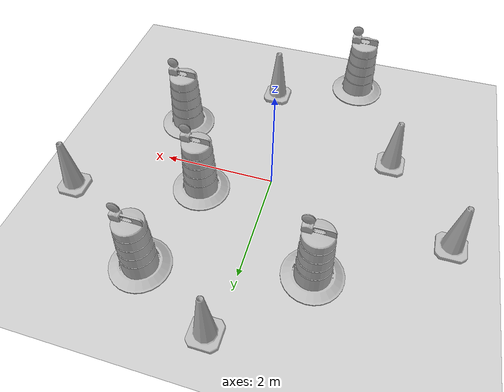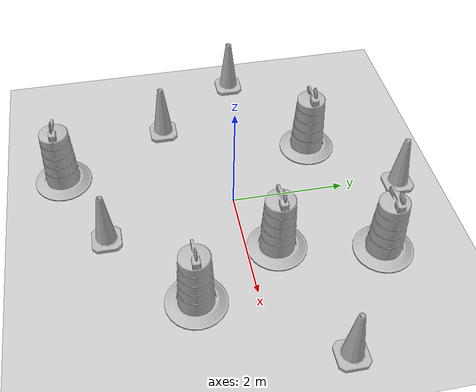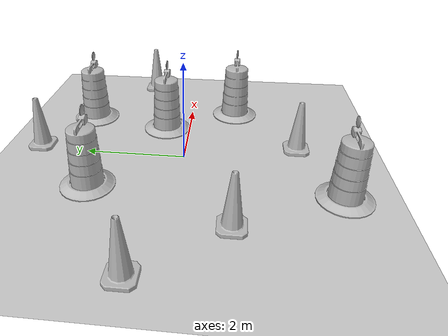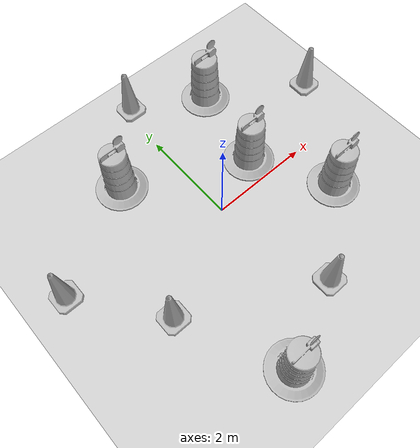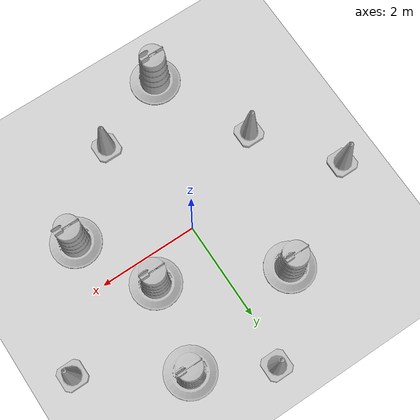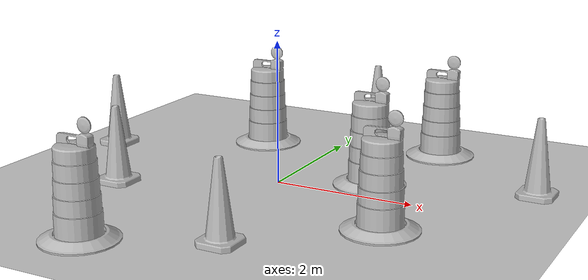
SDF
<sdf version="1.7">
 <world name="default">
  <light name="sun" type="directional">
   <pose>0 0 10 0 -0 0</pose>
   <diffuse>0.8 0.8 0.8 1</diffuse>
   <specular>0.2 0.2 0.2 1</specular>
   <attenuation>
    <range>1000</range>
    <constant>0.9</constant>
    <linear>0.01</linear>
    <quadratic>0.001</quadratic>
   </attenuation>
   <direction>-0.5 0.1 -0.9</direction>
   <spot><inner_angle>0</inner_angle><outer_angle>0</outer_angle><falloff>0</falloff></spot>
  </light>
  <model name="ground_plane">
   <static>1</static>
   <link name="link">
    <collision name="collision">
     <geometry><plane><normal>0 0 1</normal><size>100 100</size></plane></geometry>
     <surface>
      <contact><collide_bitmask>65535</collide_bitmask></contact>
      <friction><ode><mu>100</mu><mu2>50</mu2></ode></friction>
     </surface>
    </collision>
    <visual name="visual">
     <cast_shadows>0</cast_shadows>
     <geometry><plane><normal>0 0 1</normal><size>100 100</size></plane></geometry>
     <material>
      <script><uri>file://media/materials/scripts/gazebo.material</uri><name>Gazebo/Grey</name></script>
     </material>
    </visual>
   </link>
  </model>
  <gravity>0 0 -9.8</gravity>
  <magnetic_field>6e-06 2.3e-05 -4.2e-05</magnetic_field>
  <atmosphere type="adiabatic"/>
  <physics type="ode">
   <max_step_size>0.001</max_step_size>
   <real_time_factor>1</real_time_factor>
   <real_time_update_rate>1000</real_time_update_rate>
  </physics>
  <scene><ambient>0.4 0.4 0.4 1</ambient><background>0.7 0.7 0.7 1</background><shadows>1</shadows></scene>
  <spherical_coordinates>
   <surface_model>EARTH_WGS84</surface_model>
   <latitude_deg>0</latitude_deg>
   <longitude_deg>0</longitude_deg>
   <elevation>0</elevation>
   <heading_deg>0</heading_deg>
  </spherical_coordinates>
  <model name="Construction Barrel">
   <link name="link">
    <inertial>
     <pose>0 0 0.4 0 -0 0</pose>
     <mass>500</mass>
     <inertia><ixx>51.2096</ixx><iyy>51.2096</iyy><izz>25</izz><ixy>0</ixy><ixz>0</ixz><iyz>0</iyz></inertia>
    </inertial>
    <collision name="collision">
     <geometry><mesh><uri>model://construction_barrel/meshes/construction_barrel.dae</uri></mesh></geometry>
    </collision>
    <visual name="visual">
     <geometry><mesh><uri>model://construction_barrel/meshes/construction_barrel.dae</uri></mesh></geometry>
    </visual>
   </link>
   <pose>1.16208 0.510393 -2e-06 -7e-06 -4e-06 -2.4e-05</pose>
  </model>
  <model name="Construction Barrel_clone">
   <link name="link">
    <inertial>
     <pose>0 0 0.4 0 -0 0</pose>
     <mass>500</mass>
     <inertia><ixx>51.2096</ixx><iyy>51.2096</iyy><izz>25</izz><ixy>0</ixy><ixz>0</ixz><iyz>0</iyz></inertia>
    </inertial>
    <collision name="collision">
     <geometry><mesh><uri>model://construction_barrel/meshes/construction_barrel.dae</uri></mesh></geometry>
    </collision>
    <visual name="visual">
     <geometry><mesh><uri>model://construction_barrel/meshes/construction_barrel.dae</uri></mesh></geometry>
    </visual>
   </link>
   <pose>1.53548 2.25153 -2e-06 -8e-06 -4e-06 -2.1e-05</pose>
  </model>
  <model name="Construction Barrel_clone_0">
   <link name="link">
    <inertial>
     <pose>0 0 0.4 0 -0 0</pose>
     <mass>500</mass>
     <inertia><ixx>51.2096</ixx><iyy>51.2096</iyy><izz>25</izz><ixy>0</ixy><ixz>0</ixz><iyz>0</iyz></inertia>
    </inertial>
    <collision name="collision">
     <geometry><mesh><uri>model://construction_barrel/meshes/construction_barrel.dae</uri></mesh></geometry>
    </collision>
    <visual name="visual">
     <geometry><mesh><uri>model://construction_barrel/meshes/construction_barrel.dae</uri></mesh></geometry>
    </visual>
   </link>
   <pose>-1.11823 1.65347 -0 0 -0 -2.2e-05</pose>
  </model>
  <model name="Construction Barrel_clone_1">
   <link name="link">
    <inertial>
     <pose>0 0 0.4 0 -0 0</pose>
     <mass>500</mass>
     <inertia><ixx>51.2096</ixx><iyy>51.2096</iyy><izz>25</izz><ixy>0</ixy><ixz>0</ixz><iyz>0</iyz></inertia>
    </inertial>
    <collision name="collision">
     <geometry><mesh><uri>model://construction_barrel/meshes/construction_barrel.dae</uri></mesh></geometry>
    </collision>
    <visual name="visual">
     <geometry><mesh><uri>model://construction_barrel/meshes/construction_barrel.dae</uri></mesh></geometry>
    </visual>
   </link>
   <pose>-1.0628 -2.96112 -2e-06 -7e-06 -4e-06 -1.9e-05</pose>
  </model>
  <model name="Construction Barrel_clone_2">
   <link name="link">
    <inertial>
     <pose>0 0 0.4 0 -0 0</pose>
     <mass>500</mass>
     <inertia><ixx>51.2096</ixx><iyy>51.2096</iyy><izz>25</izz><ixy>0</ixy><ixz>0</ixz><iyz>0</iyz></inertia>
    </inertial>
    <collision name="collision">
     <geometry><mesh><uri>model://construction_barrel/meshes/construction_barrel.dae</uri></mesh></geometry>
    </collision>
    <visual name="visual">
     <geometry><mesh><uri>model://construction_barrel/meshes/construction_barrel.dae</uri></mesh></geometry>
    </visual>
   </link>
   <pose>1.99994 -1.00002 -1e-06 5e-06 -2e-06 -1.9e-05</pose>
  </model>
  <model name="Construction Cone">
   <link name="link">
    <collision name="collision">
     <geometry>
      <mesh><scale>10 10 10</scale><uri>model://construction_cone/meshes/construction_cone.dae</uri></mesh>
     </geometry>
    </collision>
    <visual name="visual">
     <geometry>
      <mesh><scale>10 10 10</scale><uri>model://construction_cone/meshes/construction_cone.dae</uri></mesh>
     </geometry>
    </visual>
    <inertial>
     <inertia><ixx>1</ixx><ixy>0</ixy><ixz>0</ixz><iyy>1</iyy><iyz>0</iyz><izz>1</izz></inertia>
     <mass>1</mass>
    </inertial>
   </link>
   <pose>-3.16671 0.523052 -1e-05 -1e-06 0 0</pose>
  </model>
  <model name="Construction Cone_clone">
   <link name="link">
    <collision name="collision">
     <geometry>
      <mesh><scale>10 10 10</scale><uri>model://construction_cone/meshes/construction_cone.dae</uri></mesh>
     </geometry>
    </collision>
    <visual name="visual">
     <geometry>
      <mesh><scale>10 10 10</scale><uri>model://construction_cone/meshes/construction_cone.dae</uri></mesh>
     </geometry>
    </visual>
    <inertial>
     <inertia><ixx>1</ixx><ixy>0</ixy><ixz>0</ixz><iyy>1</iyy><iyz>0</iyz><izz>1</izz></inertia>
     <mass>1</mass>
    </inertial>
   </link>
   <pose>-2 -1 -0 0 -1e-06 0</pose>
  </model>
  <model name="Construction Cone_clone_0">
   <link name="link">
    <collision name="collision">
     <geometry>
      <mesh><scale>10 10 10</scale><uri>model://construction_cone/meshes/construction_cone.dae</uri></mesh>
     </geometry>
    </collision>
    <visual name="visual">
     <geometry>
      <mesh><scale>10 10 10</scale><uri>model://construction_cone/meshes/construction_cone.dae</uri></mesh>
     </geometry>
    </visual>
    <inertial>
     <inertia><ixx>1</ixx><ixy>0</ixy><ixz>0</ixz><iyy>1</iyy><iyz>0</iyz><izz>1</izz></inertia>
     <mass>1</mass>
    </inertial>
   </link>
   <pose>0.503183 -2.29111 -0 0 -1e-06 0</pose>
  </model>
  <model name="Construction Cone_clone_1">
   <link name="link">
    <collision name="collision">
     <geometry>
      <mesh><scale>10 10 10</scale><uri>model://construction_cone/meshes/construction_cone.dae</uri></mesh>
     </geometry>
    </collision>
    <visual name="visual">
     <geometry>
      <mesh><scale>10 10 10</scale><uri>model://construction_cone/meshes/construction_cone.dae</uri></mesh>
     </geometry>
    </visual>
    <inertial>
     <inertia><ixx>1</ixx><ixy>0</ixy><ixz>0</ixz><iyy>1</iyy><iyz>0</iyz><izz>1</izz></inertia>
     <mass>1</mass>
    </inertial>
   </link>
   <pose>3.35562 1.10748 -0 0 -0 0</pose>
  </model>
  <model name="Construction Cone_clone_2">
   <link name="link">
    <collision name="collision">
     <geometry>
      <mesh><scale>10 10 10</scale><uri>model://construction_cone/meshes/construction_cone.dae</uri></mesh>
     </geometry>
    </collision>
    <visual name="visual">
     <geometry>
      <mesh><scale>10 10 10</scale><uri>model://construction_cone/meshes/construction_cone.dae</uri></mesh>
     </geometry>
    </visual>
    <inertial>
     <inertia><ixx>1</ixx><ixy>0</ixy><ixz>0</ixz><iyy>1</iyy><iyz>0</iyz><izz>1</izz></inertia>
     <mass>1</mass>
    </inertial>
   </link>
   <pose>0.150431 3.0228 -0 0 -1e-06 0</pose>
  </model>
 </world>
</sdf>
